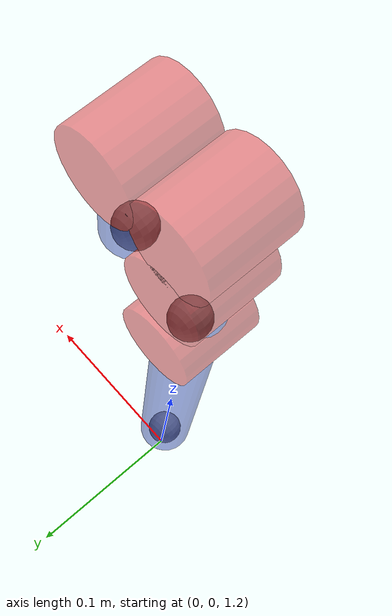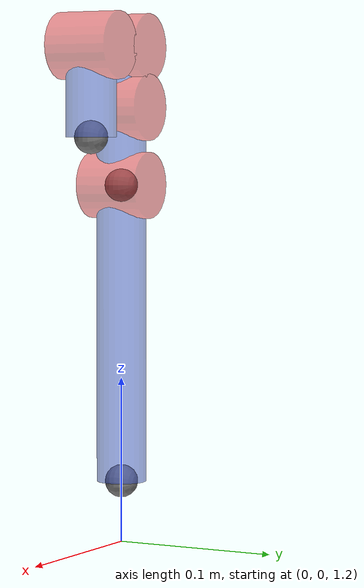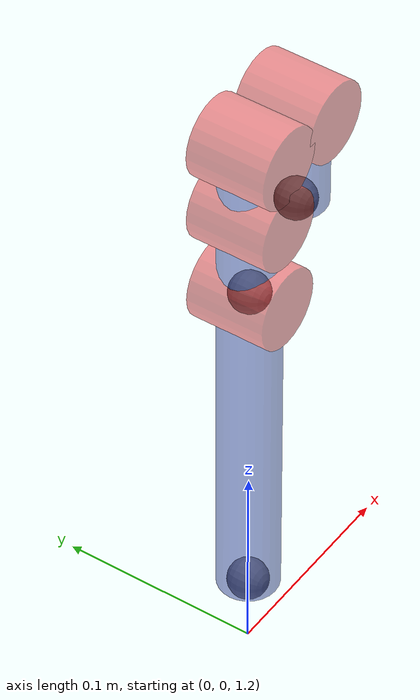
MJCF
<?xml version='1.0' encoding='UTF-8'?>
<mujoco>

    <option timestep="1e-4"/>
    <option gravity="0 0 -9.8"/>

    <asset>
        <texture type="skybox" builtin="gradient" rgb1="1 1 1" rgb2="0.5 0.5 0.5" width="265" height="256"/>
        <texture name="grid" type="2d" builtin="checker" rgb1="0.1 0.1 0.1" rgb2="0.6 0.6 0.6" width="300" height="300"/>
        <material name="grid" texture="grid" texrepeat="10 10" reflectance="0.2"/>
    </asset>

    <worldbody>
        <light pos="0 0 10"/>
        <geom type="plane" size="0.5 0.5 0.1" material="grid"/>
        <camera name="side view"  pos="0.1 -1.5 1.0" euler="90 0 0" fovy="60"/>
        <camera name="upper view" pos="0 0 1.5"   euler="0 0 0"/>
        <body name="ABC1P" pos="0 0 1.5" euler="90 0 0">
            <joint name="A" type="hinge" axis="0 0 1" stiffness="0" springref="0" damping="0"/>
            <geom name="point A" type="cylinder" pos="0 0 0" size="0.02 0.02"
                  rgba="0.89 0.14 0.16 0.5" euler="0 0 0" contype="0"/>
            <geom name="link AB" type="cylinder" pos="0 -0.018 0" size="0.015 0.018"
                  rgba="0.21 0.32 0.82 0.5" euler="90 0 0" contype="0"/>
            <body name="BC1P" pos="0 -0.036 0" euler="0 0 0">
                <joint name="B" type="hinge" axis="0 0 1" stiffness="0" springref="0" damping="0.1"/>
                <geom name="point B" type="cylinder" pos="0 0 0" size="0.02 0.02"
                      rgba="0.89 0.14 0.16 0.5" euler="0 0 0" contype="0"/>
                <geom name="link BC" type="cylinder" pos="0 -0.0234 0" size="0.015 0.0234"
                      rgba="0.21 0.32 0.82 0.5" euler="90 0 0" contype="0"/>

                <site name="sC1" size="0.01" pos="0 -0.0468 0"/>

                <body name="CP" pos="0 -0.0468 0" euler="0 0 0">

                    <geom name="point C1" type="cylinder" pos="0 0 0" size="0.02 0.02"
                          rgba="0.89 0.14 0.16 0.5" euler="0 0 0" contype="0"/>

                    <geom name="link CP" type="cylinder" pos="0 -0.09 0" size="0.015 0.09"
                          rgba="0.21 0.32 0.82 0.5" euler="90 0 0" contype="0"/>

                    <site name="sP" size="0.01" pos="0 -0.18 0"/>

                </body>

            </body>

        </body>

        <body name="DC2" pos="0.036 0 1.5" euler="90 0 0">

            <joint name="D" type="hinge" axis="0 0 1" stiffness="0" springref="0" damping="0.1"/>
            <geom name="point D" type="cylinder" pos="0 0 0" size="0.02 0.02"
                  rgba="0.89 0.14 0.16 0.5" euler="0 0 0" contype="0"/>

            <geom name="link DC" type="cylinder" pos="0 -0.027 0" size="0.015 0.027"
                  rgba="0.21 0.32 0.82 0.5" euler="90 0 0" contype="0"/>

            <site name="sC2" size="0.01" pos="0 -0.054 0"/>

        </body>

    </worldbody>

    <equality>
        <connect site1="sC1" site2="sC2"/>
    </equality>

    <actuator>
    <motor name="q1_motor" joint="A" gear="1"/>
</actuator>

    <sensor>
    <framepos objtype="site" objname="sP"/>
    <jointpos name="q1_pos" joint="A"/>
    <jointvel name="q1_vel" joint="A"/>
     </sensor>

</mujoco>
